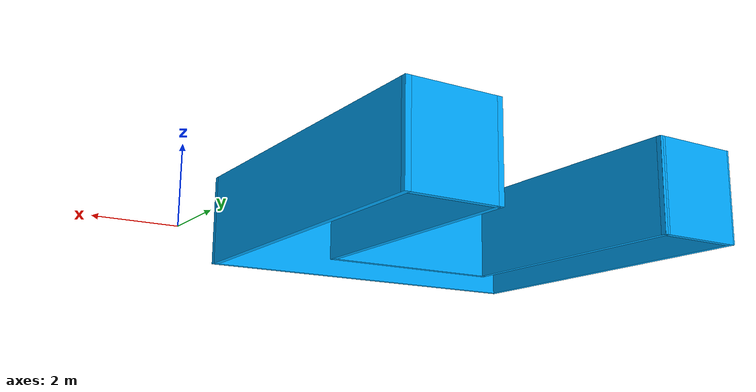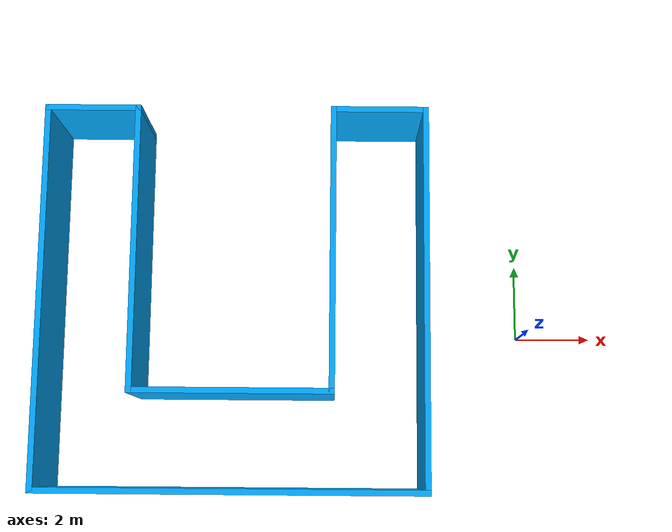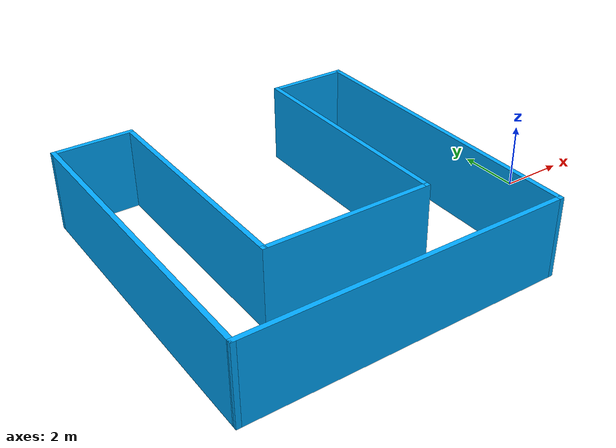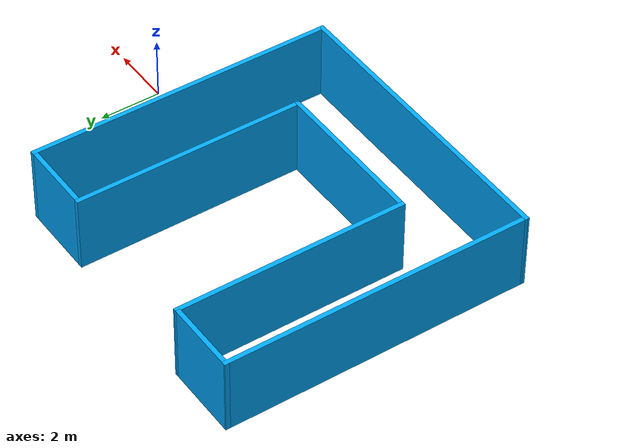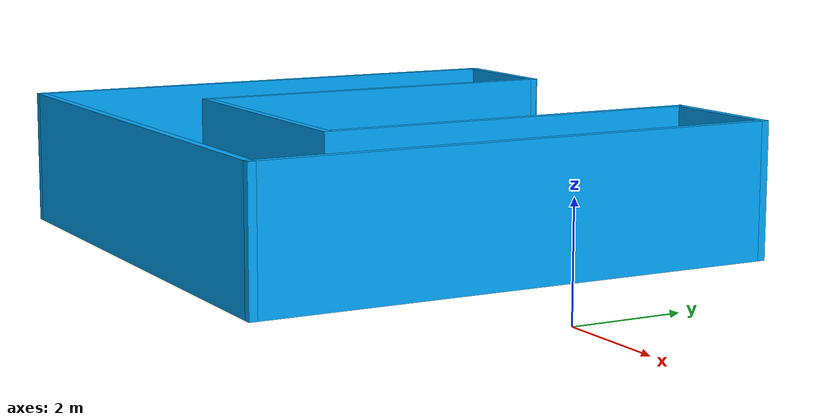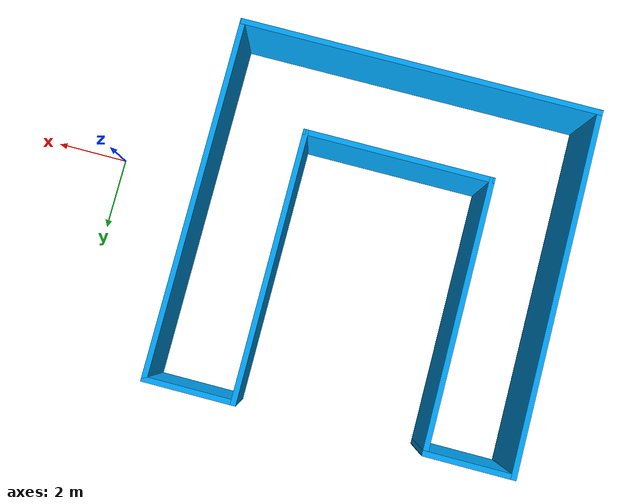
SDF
<?xml version='1.0'?>
<sdf version='1.6'>
  <model name='mybuilding'>
    <pose frame=''>-7.56802 0.784122 0 0 -0 0</pose>
    <link name='Wall_10'>
      <collision name='Wall_10_Collision'>
        <geometry>
          <box>
            <size>7.5 0.15 2.5</size>
          </box>
        </geometry>
        <pose frame=''>0 0 1.25 0 -0 0</pose>
      </collision>
      <visual name='Wall_10_Visual'>
        <pose frame=''>0 0 1.25 0 -0 0</pose>
        <geometry>
          <box>
            <size>7.5 0.15 2.5</size>
          </box>
        </geometry>
        <material>
          <script>
            <uri>file://media/materials/scripts/gazebo.material</uri>
            <name>Gazebo/Grey</name>
          </script>
          <ambient>0 0.666667 1 1</ambient>
        </material>
        <meta>
          <layer>0</layer>
        </meta>
      </visual>
      <pose frame=''>2.52498 1.25012 0 0 -0 1.5708</pose>
    </link>
    <link name='Wall_2'>
      <collision name='Wall_2_Collision'>
        <geometry>
          <box>
            <size>10 0.15 2.5</size>
          </box>
        </geometry>
        <pose frame=''>0 0 1.25 0 -0 0</pose>
      </collision>
      <visual name='Wall_2_Visual'>
        <pose frame=''>0 0 1.25 0 -0 0</pose>
        <geometry>
          <box>
            <size>10 0.15 2.5</size>
          </box>
        </geometry>
        <material>
          <script>
            <uri>file://media/materials/scripts/gazebo.material</uri>
            <name>Gazebo/Grey</name>
          </script>
          <ambient>0 0.666667 1 1</ambient>
        </material>
        <meta>
          <layer>0</layer>
        </meta>
      </visual>
      <pose frame=''>-4.92498 -0.000122 0 0 0 -1.5708</pose>
    </link>
    <link name='Wall_3'>
      <collision name='Wall_3_Collision'>
        <geometry>
          <box>
            <size>10 0.15 2.5</size>
          </box>
        </geometry>
        <pose frame=''>0 0 1.25 0 -0 0</pose>
      </collision>
      <visual name='Wall_3_Visual'>
        <pose frame=''>0 0 1.25 0 -0 0</pose>
        <geometry>
          <box>
            <size>10 0.15 2.5</size>
          </box>
        </geometry>
        <material>
          <script>
            <uri>file://media/materials/scripts/gazebo.material</uri>
            <name>Gazebo/Grey</name>
          </script>
          <ambient>0 0.666667 1 1</ambient>
        </material>
        <meta>
          <layer>0</layer>
        </meta>
      </visual>
      <pose frame=''>3e-06 -4.925 0 0 -0 2.4e-05</pose>
    </link>
    <link name='Wall_4'>
      <collision name='Wall_4_Collision'>
        <geometry>
          <box>
            <size>10 0.15 2.5</size>
          </box>
        </geometry>
        <pose frame=''>0 0 1.25 0 -0 0</pose>
      </collision>
      <visual name='Wall_4_Visual'>
        <pose frame=''>0 0 1.25 0 -0 0</pose>
        <geometry>
          <box>
            <size>10 0.15 2.5</size>
          </box>
        </geometry>
        <material>
          <script>
            <uri>file://media/materials/scripts/gazebo.material</uri>
            <name>Gazebo/Grey</name>
          </script>
          <ambient>0 0.666667 1 1</ambient>
        </material>
        <meta>
          <layer>0</layer>
        </meta>
      </visual>
      <pose frame=''>4.92498 0.000115 0 0 -0 1.5708</pose>
    </link>
    <link name='Wall_5'>
      <collision name='Wall_5_Collision'>
        <geometry>
          <box>
            <size>2.5 0.15 2.5</size>
          </box>
        </geometry>
        <pose frame=''>0 0 1.25 0 -0 0</pose>
      </collision>
      <visual name='Wall_5_Visual'>
        <pose frame=''>0 0 1.25 0 -0 0</pose>
        <geometry>
          <box>
            <size>2.5 0.15 2.5</size>
          </box>
        </geometry>
        <material>
          <script>
            <uri>file://media/materials/scripts/gazebo.material</uri>
            <name>Gazebo/Grey</name>
          </script>
          <ambient>0 0.666667 1 1</ambient>
        </material>
        <meta>
          <layer>0</layer>
        </meta>
      </visual>
      <pose frame=''>3.74998 4.92511 0 0 -0 3.14159</pose>
    </link>
    <link name='Wall_7'>
      <collision name='Wall_7_Collision'>
        <geometry>
          <box>
            <size>2.5 0.15 2.5</size>
          </box>
        </geometry>
        <pose frame=''>0 0 1.25 0 -0 0</pose>
      </collision>
      <visual name='Wall_7_Visual'>
        <pose frame=''>0 0 1.25 0 -0 0</pose>
        <geometry>
          <box>
            <size>2.5 0.15 2.5</size>
          </box>
        </geometry>
        <material>
          <script>
            <uri>file://media/materials/scripts/gazebo.material</uri>
            <name>Gazebo/Grey</name>
          </script>
          <ambient>0 0.666667 1 1</ambient>
        </material>
        <meta>
          <layer>0</layer>
        </meta>
      </visual>
      <pose frame=''>-3.75 4.925 0 0 -0 0.000101</pose>
    </link>
    <link name='Wall_8'>
      <collision name='Wall_8_Collision'>
        <geometry>
          <box>
            <size>7.5 0.15 2.5</size>
          </box>
        </geometry>
        <pose frame=''>0 0 1.25 0 -0 0</pose>
      </collision>
      <visual name='Wall_8_Visual'>
        <pose frame=''>0 0 1.25 0 -0 0</pose>
        <geometry>
          <box>
            <size>7.5 0.15 2.5</size>
          </box>
        </geometry>
        <material>
          <script>
            <uri>file://media/materials/scripts/gazebo.material</uri>
            <name>Gazebo/Grey</name>
          </script>
          <ambient>0 0.666667 1 1</ambient>
        </material>
        <meta>
          <layer>0</layer>
        </meta>
      </visual>
      <pose frame=''>-2.57502 1.25012 0 0 0 -1.5708</pose>
    </link>
    <link name='Wall_9'>
      <collision name='Wall_9_Collision'>
        <geometry>
          <box>
            <size>5.25 0.15 2.5</size>
          </box>
        </geometry>
        <pose frame=''>0 0 1.25 0 -0 0</pose>
      </collision>
      <visual name='Wall_9_Visual'>
        <pose frame=''>0 0 1.25 0 -0 0</pose>
        <geometry>
          <box>
            <size>5.25 0.15 2.5</size>
          </box>
        </geometry>
        <material>
          <script>
            <uri>file://media/materials/scripts/gazebo.material</uri>
            <name>Gazebo/Grey</name>
          </script>
          <ambient>0 0.666667 1 1</ambient>
        </material>
        <meta>
          <layer>0</layer>
        </meta>
      </visual>
      <pose frame=''>-0.025016 -2.42489 0 0 -0 0</pose>
    </link>
    <static>1</static>
  </model>
</sdf>
